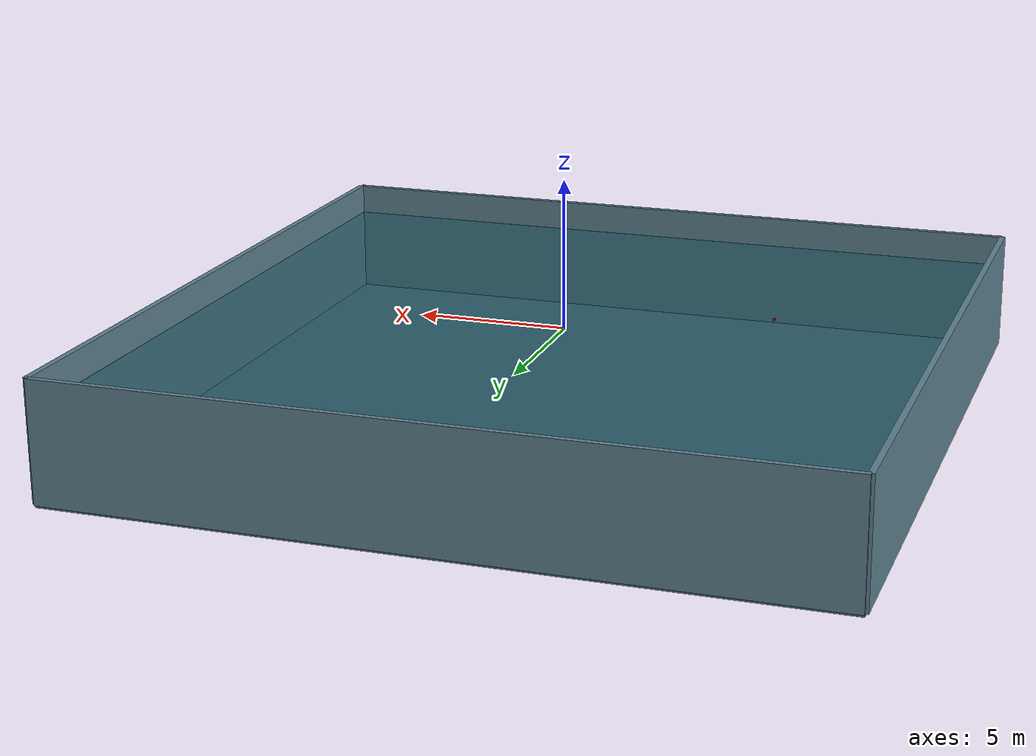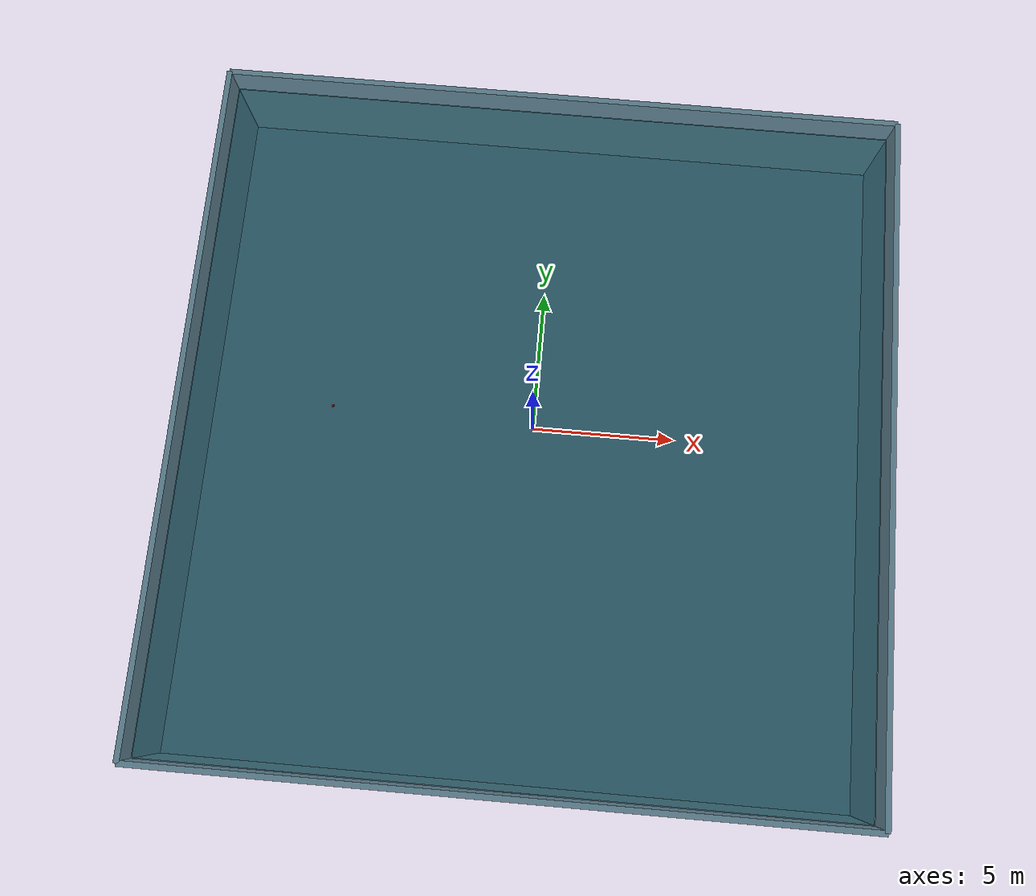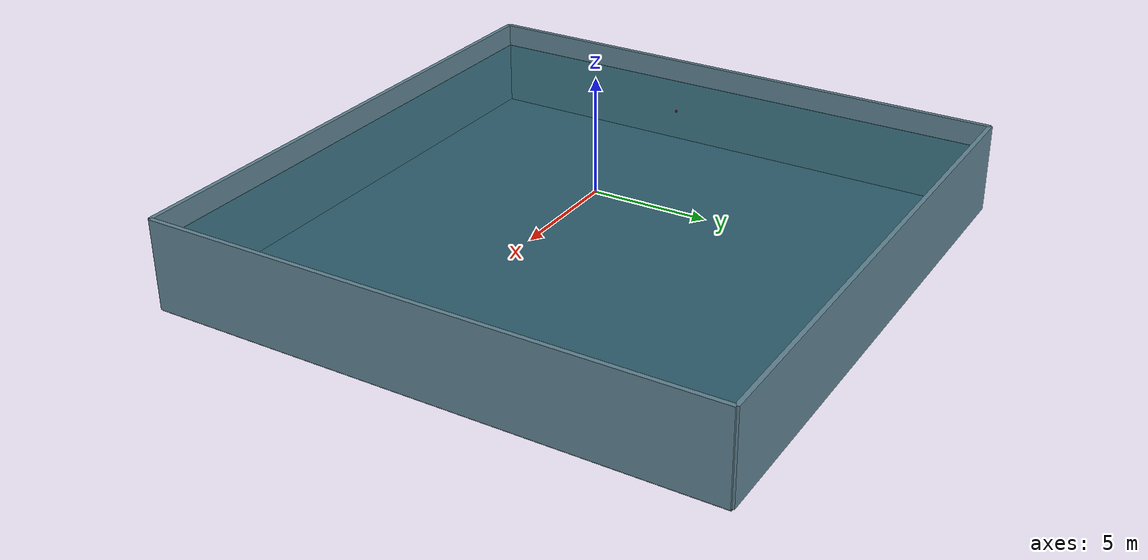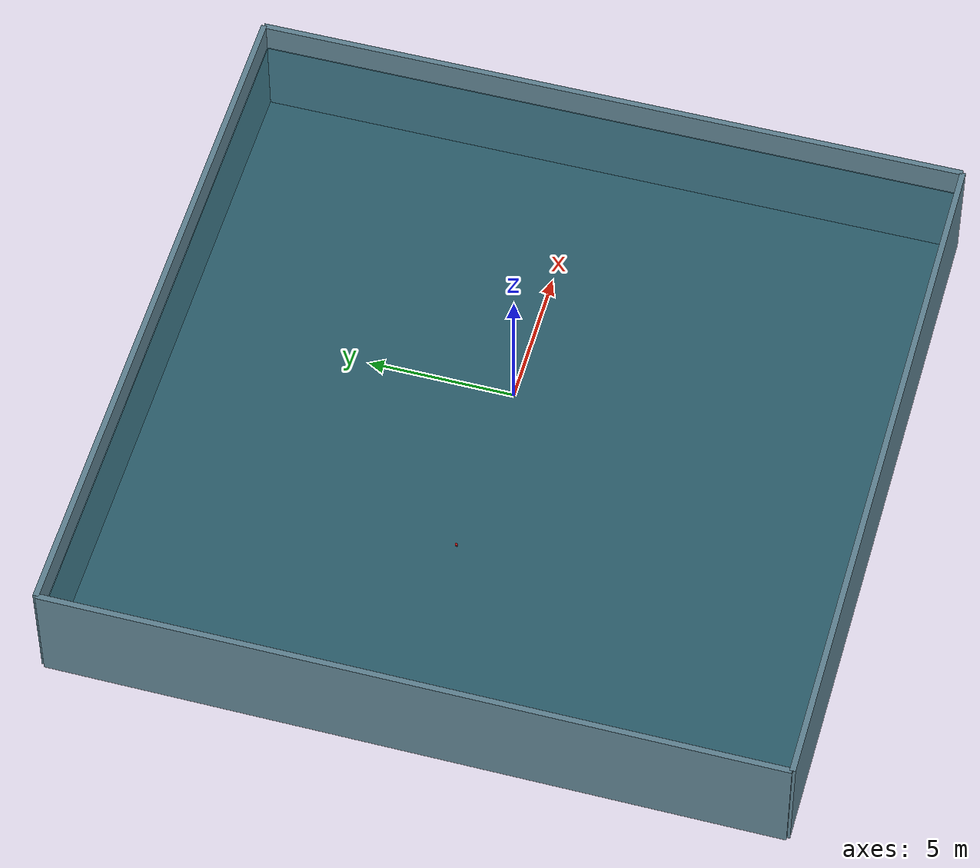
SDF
<sdf version="1.8">
 <world name="underwater_pool">
  <physics name="1ms" type="ode">
   <max_step_size>0.001</max_step_size>
   <real_time_factor>3</real_time_factor>
   <ode>
    <solver><type>quick</type><iters>50</iters><sor>1.3</sor></solver>
    <constraints>
     <cfm>0.0</cfm>
     <erp>0.2</erp>
     <contact_max_correcting_vel>0.1</contact_max_correcting_vel>
     <contact_surface_layer>0.001</contact_surface_layer>
    </constraints>
   </ode>
  </physics>
  <plugin filename="ignition-gazebo-physics-system" name="ignition::gazebo::systems::Physics"/>
  <plugin filename="ignition-gazebo-user-commands-system" name="ignition::gazebo::systems::UserCommands"/>
  <plugin filename="ignition-gazebo-scene-broadcaster-system" name="ignition::gazebo::systems::SceneBroadcaster"/>
  <plugin filename="ignition-gazebo-contact-system" name="ignition::gazebo::systems::Contact"/>
  <plugin filename="ignition-gazebo-buoyancy-system" name="ignition::gazebo::systems::Buoyancy">
   <graded_buoyancy>
    <default_density>1025</default_density>
    <density_change><above_depth>0</above_depth><density>1.2</density></density_change>
   </graded_buoyancy>
  </plugin>
  <plugin filename="ignition-gazebo-imu-system" name="ignition::gazebo::systems::Imu"/>
  <plugin filename="ignition-gazebo-sensors-system" name="ignition::gazebo::systems::Sensors">
   <render_engine>ogre2</render_engine>
  </plugin>
  <plugin filename="ignition-gazebo-apply-link-wrench-system" name="ignition::gazebo::systems::ApplyLinkWrench"/>
  <gravity>0 0 -9.81</gravity>
  <scene>
   <ambient>0 0 0 1</ambient>
   <background>0 0 0 1</background>
   <shadows>false</shadows>
   <grid>false</grid>
  </scene>
  <light type="directional" name="sun">
   <cast_shadows>false</cast_shadows>
   <pose>0 0 10 0 0 0</pose>
   <diffuse>0.9 0.95 1.0 1</diffuse>
   <specular>0.8 0.8 0.8 1</specular>
   <attenuation>
    <range>1000</range>
    <constant>0.9</constant>
    <linear>0.01</linear>
    <quadratic>0.001</quadratic>
   </attenuation>
   <direction>-0.5 0.1 -0.9</direction>
  </light>
  <light type="point" name="underwater_light_north">
   <cast_shadows>false</cast_shadows>
   <pose>0 12 -1.5 0 0 0</pose>
   <diffuse>0.4 0.8 1.0 1</diffuse>
   <specular>0.2 0.5 0.8 1</specular>
   <attenuation>
    <range>15</range>
    <constant>0.2</constant>
    <linear>0.05</linear>
    <quadratic>0.01</quadratic>
   </attenuation>
  </light>
  <light type="point" name="underwater_light_south">
   <cast_shadows>false</cast_shadows>
   <pose>0 -12 -1.5 0 0 0</pose>
   <diffuse>0.4 0.8 1.0 1</diffuse>
   <specular>0.2 0.5 0.8 1</specular>
   <attenuation>
    <range>15</range>
    <constant>0.2</constant>
    <linear>0.05</linear>
    <quadratic>0.01</quadratic>
   </attenuation>
  </light>
  <light type="point" name="underwater_light_east">
   <cast_shadows>false</cast_shadows>
   <pose>12 0 -1.5 0 0 0</pose>
   <diffuse>0.4 0.8 1.0 1</diffuse>
   <specular>0.2 0.5 0.8 1</specular>
   <attenuation>
    <range>15</range>
    <constant>0.2</constant>
    <linear>0.05</linear>
    <quadratic>0.01</quadratic>
   </attenuation>
  </light>
  <light type="point" name="underwater_light_west">
   <cast_shadows>false</cast_shadows>
   <pose>-12 0 -1.5 0 0 0</pose>
   <diffuse>0.4 0.8 1.0 1</diffuse>
   <specular>0.2 0.5 0.8 1</specular>
   <attenuation>
    <range>15</range>
    <constant>0.2</constant>
    <linear>0.05</linear>
    <quadratic>0.01</quadratic>
   </attenuation>
  </light>
  <model name="pool_floor">
   <static>true</static>
   <pose>0 0 -3.05 0 0 0</pose>
   <link name="floor">
    <collision name="collision">
     <geometry><box><size>25 25 0.1</size></box></geometry>
     <surface>
      <contact><ode><kp>500000</kp><kd>200</kd><max_vel>0.5</max_vel><min_depth>0.001</min_depth></ode></contact>
      <friction><ode><mu>0.1</mu><mu2>0.1</mu2></ode></friction>
     </surface>
    </collision>
    <visual name="visual">
     <geometry><box><size>25 25 0.1</size></box></geometry>
     <material>
      <ambient>0.20 0.32 0.36 1</ambient>
      <diffuse>0.28 0.42 0.48 1</diffuse>
      <specular>0.08 0.12 0.14 1</specular>
      <pbr>
       <metal>
        <albedo_map>../media/textures/pool_tile_lines2.png</albedo_map>
        <normal_map>../media/textures/pool_tile_normal_tiled.png</normal_map>
        <roughness>0.72</roughness>
        <metalness>0.0</metalness>
       </metal>
      </pbr>
     </material>
    </visual>
   </link>
  </model>
  <model name="pool_wall_north">
   <static>true</static>
   <pose>0 12.5 -1 0 0 0</pose>
   <link name="wall">
    <collision name="collision">
     <geometry><box><size>25 0.2 4</size></box></geometry>
     <surface>
      <contact><ode><kp>500000</kp><kd>200</kd><max_vel>0.5</max_vel><min_depth>0.001</min_depth></ode></contact>
      <friction><ode><mu>0.1</mu><mu2>0.1</mu2></ode></friction>
     </surface>
    </collision>
    <visual name="visual">
     <geometry><box><size>25 0.2 4</size></box></geometry>
     <material>
      <ambient>0.30 0.42 0.46 1</ambient>
      <diffuse>0.38 0.52 0.58 1</diffuse>
      <specular>0.10 0.14 0.16 1</specular>
      <pbr>
       <metal>
        <albedo_map>../media/textures/Poliigon_TilesCeramicWhite_6956_BaseColor.jpg</albedo_map>
        <normal_map>../media/textures/Poliigon_TilesCeramicWhite_6956_Normal.png</normal_map>
        <roughness_map>../media/textures/Poliigon_TilesCeramicWhite_6956_Roughness.jpg</roughness_map>
        <metalness>0.0</metalness>
        <scale>20.0 4.0</scale>
       </metal>
      </pbr>
     </material>
    </visual>
   </link>
  </model>
  <model name="pool_wall_south">
   <static>true</static>
   <pose>0 -12.5 -1 0 0 0</pose>
   <link name="wall">
    <collision name="collision">
     <geometry><box><size>25 0.2 4</size></box></geometry>
     <surface>
      <contact><ode><kp>500000</kp><kd>200</kd><max_vel>0.5</max_vel><min_depth>0.001</min_depth></ode></contact>
      <friction><ode><mu>0.1</mu><mu2>0.1</mu2></ode></friction>
     </surface>
    </collision>
    <visual name="visual">
     <geometry><box><size>25 0.2 4</size></box></geometry>
     <material>
      <ambient>0.30 0.42 0.46 1</ambient>
      <diffuse>0.38 0.52 0.58 1</diffuse>
      <specular>0.10 0.14 0.16 1</specular>
      <pbr>
       <metal>
        <albedo_map>../media/textures/Poliigon_TilesCeramicWhite_6956_BaseColor.jpg</albedo_map>
        <normal_map>../media/textures/Poliigon_TilesCeramicWhite_6956_Normal.png</normal_map>
        <roughness_map>../media/textures/Poliigon_TilesCeramicWhite_6956_Roughness.jpg</roughness_map>
        <metalness>0.0</metalness>
        <scale>20.0 4.0</scale>
       </metal>
      </pbr>
     </material>
    </visual>
   </link>
  </model>
  <model name="pool_wall_east">
   <static>true</static>
   <pose>12.5 0 -1 0 0 0</pose>
   <link name="wall">
    <collision name="collision">
     <geometry><box><size>0.2 25 4</size></box></geometry>
     <surface>
      <contact><ode><kp>500000</kp><kd>200</kd><max_vel>0.5</max_vel><min_depth>0.001</min_depth></ode></contact>
      <friction><ode><mu>0.1</mu><mu2>0.1</mu2></ode></friction>
     </surface>
    </collision>
    <visual name="visual">
     <geometry><box><size>0.2 25 4</size></box></geometry>
     <material>
      <ambient>0.30 0.42 0.46 1</ambient>
      <diffuse>0.38 0.52 0.58 1</diffuse>
      <specular>0.10 0.14 0.16 1</specular>
      <pbr>
       <metal>
        <albedo_map>../media/textures/Poliigon_TilesCeramicWhite_6956_BaseColor.jpg</albedo_map>
        <normal_map>../media/textures/Poliigon_TilesCeramicWhite_6956_Normal.png</normal_map>
        <roughness_map>../media/textures/Poliigon_TilesCeramicWhite_6956_Roughness.jpg</roughness_map>
        <metalness>0.0</metalness>
        <scale>20.0 4.0</scale>
       </metal>
      </pbr>
     </material>
    </visual>
   </link>
  </model>
  <model name="pool_wall_west">
   <static>true</static>
   <pose>-12.5 0 -1 0 0 0</pose>
   <link name="wall">
    <collision name="collision">
     <geometry><box><size>0.2 25 4</size></box></geometry>
     <surface>
      <contact><ode><kp>500000</kp><kd>200</kd><max_vel>0.5</max_vel><min_depth>0.001</min_depth></ode></contact>
      <friction><ode><mu>0.1</mu><mu2>0.1</mu2></ode></friction>
     </surface>
    </collision>
    <visual name="visual">
     <geometry><box><size>0.2 25 4</size></box></geometry>
     <material>
      <ambient>0.30 0.42 0.46 1</ambient>
      <diffuse>0.38 0.52 0.58 1</diffuse>
      <specular>0.10 0.14 0.16 1</specular>
      <pbr>
       <metal>
        <albedo_map>../media/textures/Poliigon_TilesCeramicWhite_6956_BaseColor.jpg</albedo_map>
        <normal_map>../media/textures/Poliigon_TilesCeramicWhite_6956_Normal.png</normal_map>
        <roughness_map>../media/textures/Poliigon_TilesCeramicWhite_6956_Roughness.jpg</roughness_map>
        <metalness>0.0</metalness>
        <scale>20.0 4.0</scale>
       </metal>
      </pbr>
     </material>
    </visual>
   </link>
  </model>
  <model name="water_surface_texture">
   <static>true</static>
   <link name="surface">
    <visual name="visual">
     <cast_shadows>false</cast_shadows>
     <transparency>0.30</transparency>
     <geometry><plane><normal>0 0 1</normal><size>25 25</size></plane></geometry>
     <material>
      <ambient>0.30 0.62 0.78 0.70</ambient>
      <diffuse>0.35 0.68 0.82 0.70</diffuse>
      <specular>0.90 0.92 0.95 0.70</specular>
      <pbr>
       <metal>
        <albedo_map>../media/textures/water_water_0051_01.jpg</albedo_map>
        <normal_map>../media/textures/water_normal.png</normal_map>
        <roughness>0.08</roughness>
        <metalness>0.02</metalness>
       </metal>
      </pbr>
     </material>
    </visual>
   </link>
  </model>
  <model name="test_box">
   <pose>-7 0 1.0 0 0 0</pose>
   <link name="box_link">
    <inertial>
     <mass>0.5</mass>
     <inertia>
      <ixx>0.000833</ixx>
      <ixy>0.0</ixy>
      <ixz>0.0</ixz>
      <iyy>0.000833</iyy>
      <iyz>0.0</iyz>
      <izz>0.000833</izz>
     </inertia>
    </inertial>
    <collision name="box_collision"><geometry><box><size>0.07 0.07 0.07</size></box></geometry></collision>
    <visual name="box_visual">
     <geometry><box><size>0.07 0.07 0.07</size></box></geometry>
     <material>
      <ambient>0.8 0.1 0.1 1.0</ambient>
      <diffuse>0.8 0.1 0.1 1.0</diffuse>
      <specular>0.1 0.1 0.1 1.0</specular>
     </material>
    </visual>
   </link>
  </model>
  <model name="water_tint">
   <static>true</static>
   <pose>0 0 -1.5 0 0 0</pose>
   <link name="volume">
    <visual name="visual">
     <cast_shadows>false</cast_shadows>
     <transparency>0.62</transparency>
     <geometry><box><size>24.74 24.74 2.94</size></box></geometry>
     <material>
      <double_sided>true</double_sided>
      <lighting>false</lighting>
      <ambient>0.05 0.34 0.40 1</ambient>
      <diffuse>0.05 0.34 0.40 1</diffuse>
      <specular>0 0 0 1</specular>
     </material>
    </visual>
   </link>
  </model>
 </world>
</sdf>
